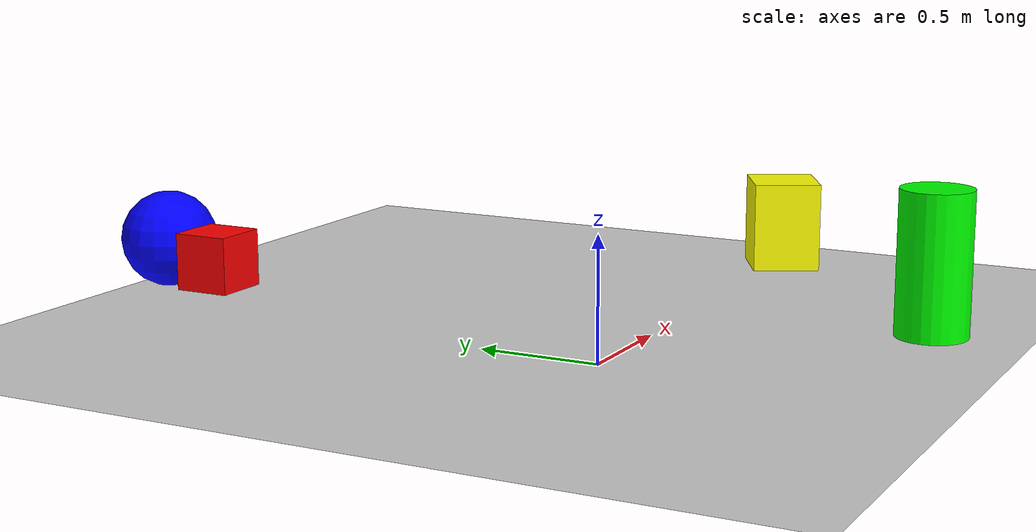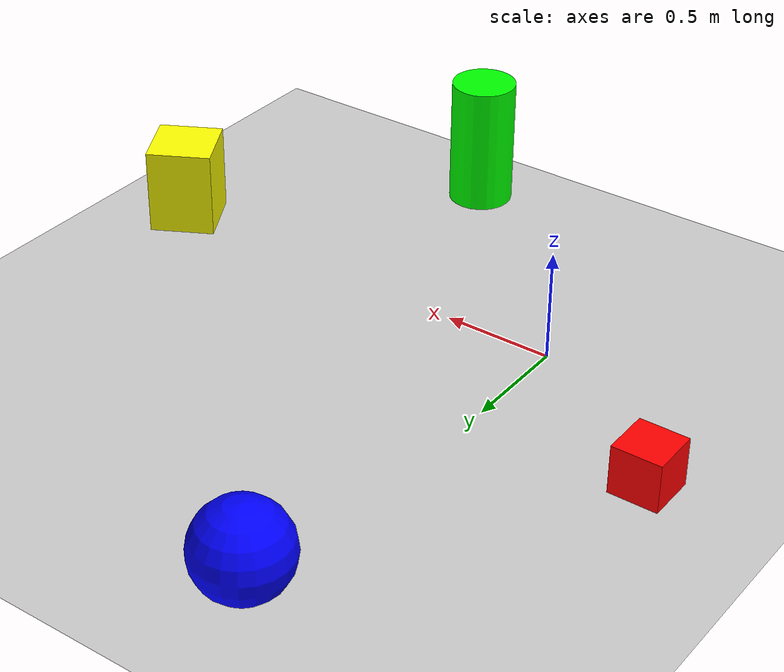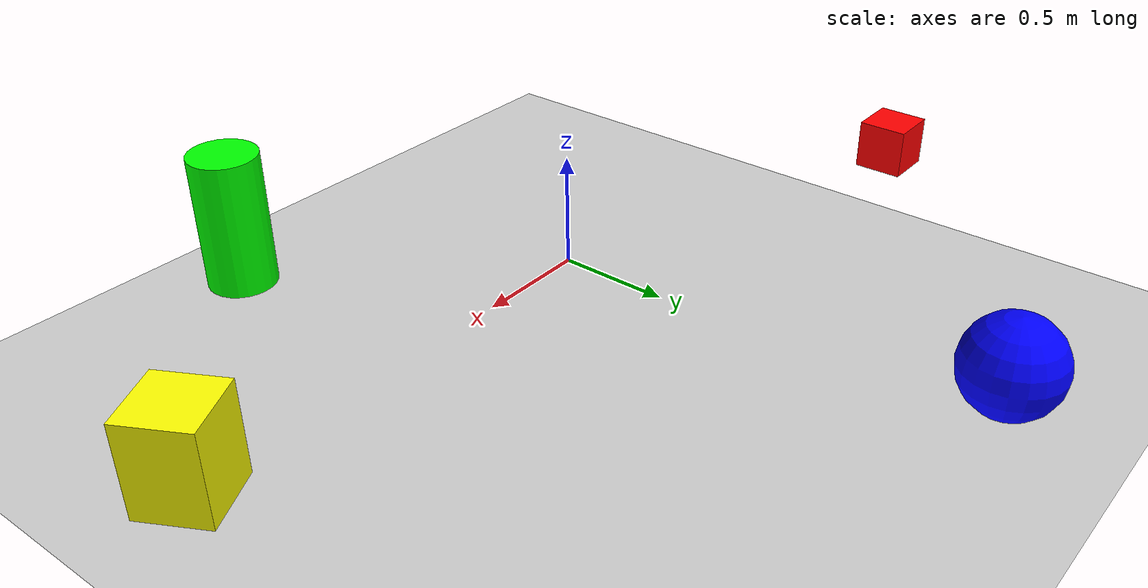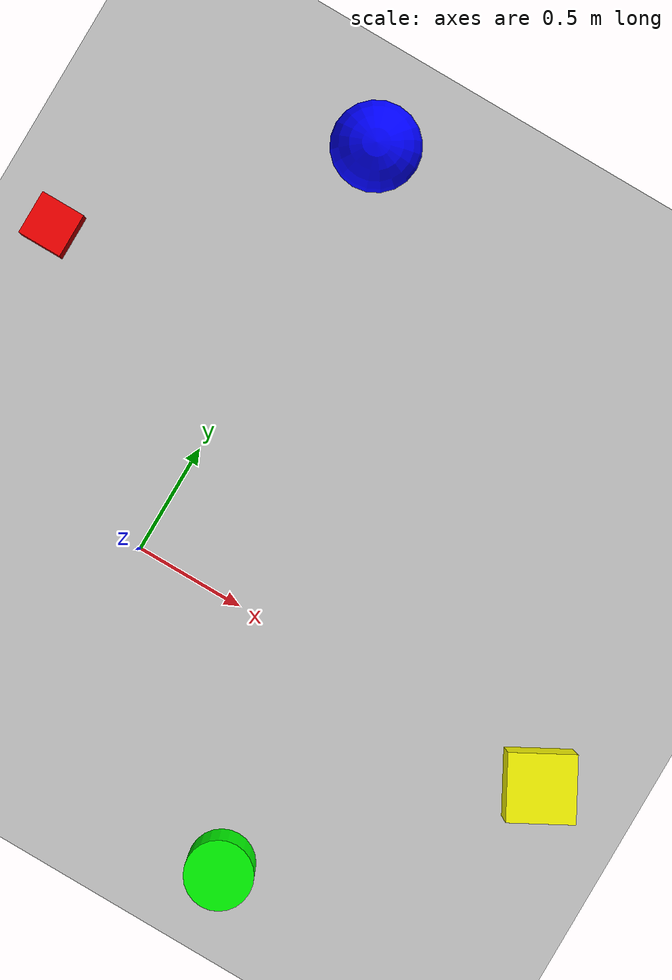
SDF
<sdf version="1.6">
 <world name="object_detection_world">
  <include><uri>model://sun</uri></include>
  <include><uri>model://ground_plane</uri></include>
  <model name="red_cube">
   <pose>-1 1 0.5 0 0 0</pose>
   <link name="link">
    <visual name="visual">
     <geometry><box><size>0.2 0.2 0.2</size></box></geometry>
     <material><ambient>1 0 0 1</ambient><diffuse>1 0 0 1</diffuse></material>
    </visual>
    <collision name="collision"><geometry><box><size>0.2 0.2 0.2</size></box></geometry></collision>
    <inertial>
     <mass>1.0</mass>
     <inertia>
      <ixx>0.003333</ixx>
      <ixy>0</ixy>
      <ixz>0</ixz>
      <iyy>0.003333</iyy>
      <iyz>0</iyz>
      <izz>0.003333</izz>
     </inertia>
    </inertial>
   </link>
  </model>
  <model name="green_cylinder">
   <pose>1 -1 0.3 0 0 0</pose>
   <link name="link">
    <visual name="visual">
     <geometry><cylinder><radius>0.15</radius><length>0.6</length></cylinder></geometry>
     <material><ambient>0 1 0 1</ambient><diffuse>0 1 0 1</diffuse></material>
    </visual>
    <collision name="collision">
     <geometry><cylinder><radius>0.15</radius><length>0.6</length></cylinder></geometry>
    </collision>
    <inertial>
     <mass>1.0</mass>
     <inertia><ixx>0.01625</ixx><ixy>0</ixy><ixz>0</ixz><iyy>0.01625</iyy><iyz>0</iyz><izz>0.01125</izz></inertia>
    </inertial>
   </link>
  </model>
  <model name="blue_sphere">
   <pose>0 2 0.3 0 0 0</pose>
   <link name="link">
    <visual name="visual">
     <geometry><sphere><radius>0.2</radius></sphere></geometry>
     <material><ambient>0 0 1 1</ambient><diffuse>0 0 1 1</diffuse></material>
    </visual>
    <collision name="collision"><geometry><sphere><radius>0.2</radius></sphere></geometry></collision>
    <inertial>
     <mass>1.0</mass>
     <inertia><ixx>0.016</ixx><ixy>0</ixy><ixz>0</ixz><iyy>0.016</iyy><iyz>0</iyz><izz>0.016</izz></inertia>
    </inertial>
   </link>
  </model>
  <model name="yellow_box">
   <pose>2 0 0.2 0 0 0.5</pose>
   <link name="link">
    <visual name="visual">
     <geometry><box><size>0.3 0.3 0.4</size></box></geometry>
     <material><ambient>1 1 0 1</ambient><diffuse>1 1 0 1</diffuse></material>
    </visual>
    <collision name="collision"><geometry><box><size>0.3 0.3 0.4</size></box></geometry></collision>
    <inertial>
     <mass>1.0</mass>
     <inertia><ixx>0.025</ixx><ixy>0</ixy><ixz>0</ixz><iyy>0.025</iyy><iyz>0</iyz><izz>0.01875</izz></inertia>
    </inertial>
   </link>
  </model>
  <light name="key_light" type="directional">
   <pose>0 0 10 0 0 0</pose>
   <diffuse>0.8 0.8 0.8 1</diffuse>
   <specular>0.2 0.2 0.2 1</specular>
   <attenuation>
    <range>1000</range>
    <constant>0.9</constant>
    <linear>0.01</linear>
    <quadratic>0.001</quadratic>
   </attenuation>
   <direction>-0.3 -0.3 -0.9</direction>
  </light>
 </world>
</sdf>
